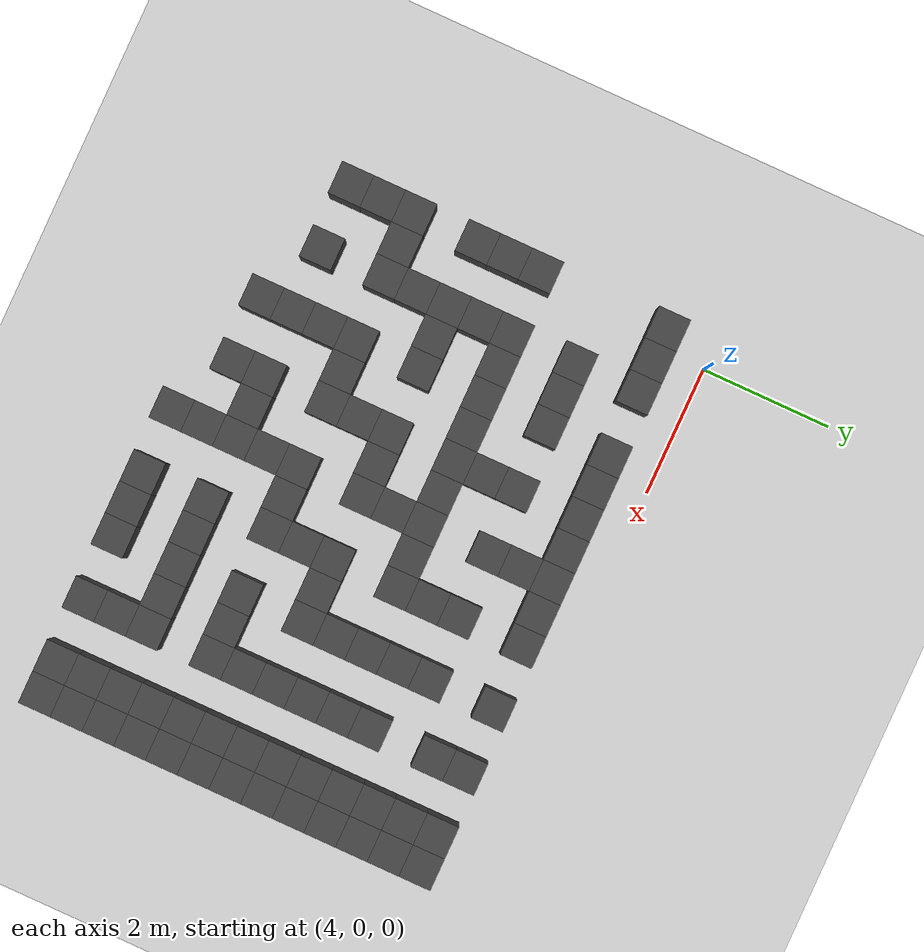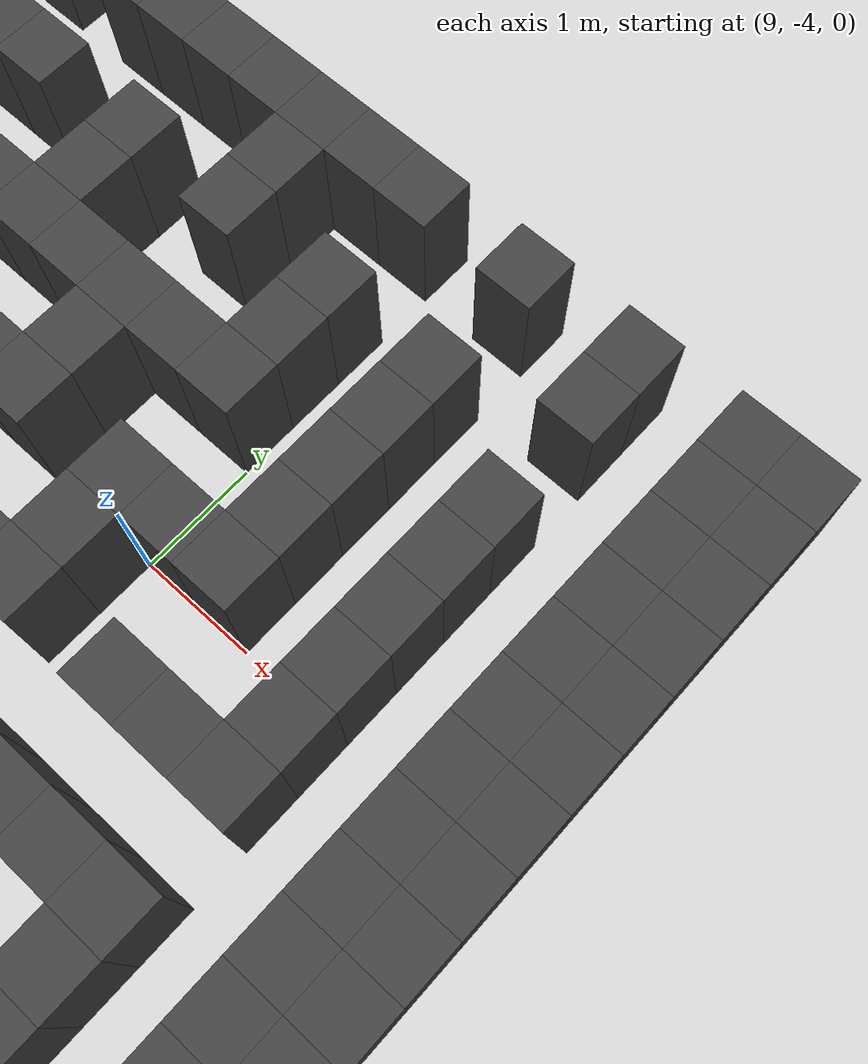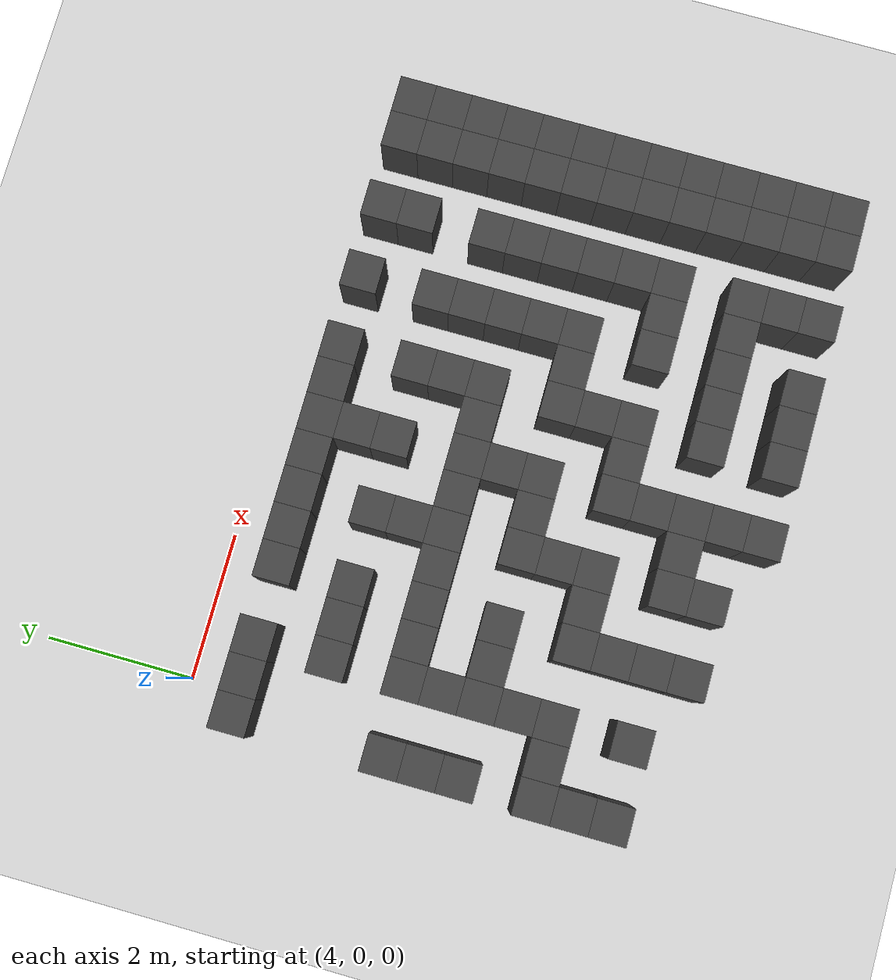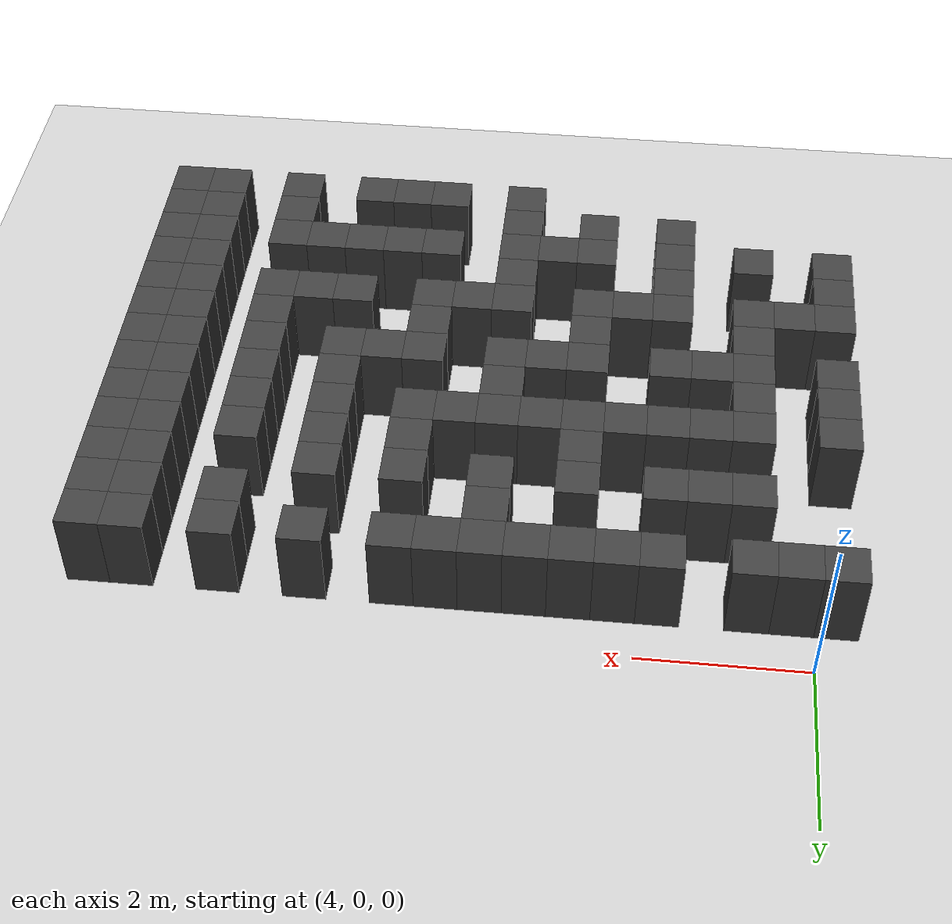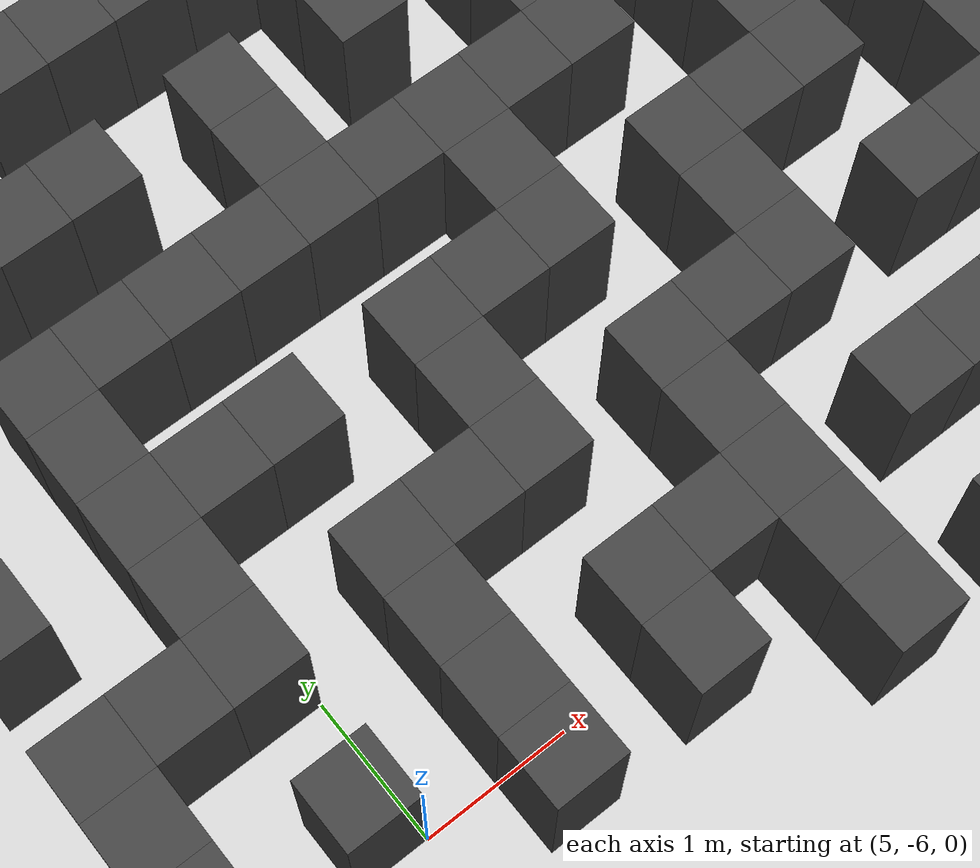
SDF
<sdf version="1.7">
 <world name="map_18347">
  <model name="ground_plane">
   <static>true</static>
   <link name="link">
    <collision name="collision">
     <geometry><plane><normal>0 0 1</normal><size>200 200</size></plane></geometry>
    </collision>
    <visual name="visual">
     <geometry><plane><normal>0 0 1</normal><size>200 200</size></plane></geometry>
     <material><ambient>0.8 0.8 0.8 1</ambient><diffuse>0.8 0.8 0.8 1</diffuse></material>
    </visual>
   </link>
  </model>
  <model name="maze_environment">
   <static>true</static>
   <link name="wall_681">
    <pose>3.750 -0.750 0.500 0 0 0</pose>
    <collision name="col"><geometry><box><size>0.5 0.5 1.0</size></box></geometry></collision>
    <visual name="vis">
     <geometry><box><size>0.5 0.5 1.0</size></box></geometry>
     <material><ambient>0.15 0.15 0.15 1</ambient><diffuse>0.25 0.25 0.25 1</diffuse></material>
    </visual>
   </link>
   <link name="wall_682">
    <pose>4.250 -0.750 0.500 0 0 0</pose>
    <collision name="col"><geometry><box><size>0.5 0.5 1.0</size></box></geometry></collision>
    <visual name="vis">
     <geometry><box><size>0.5 0.5 1.0</size></box></geometry>
     <material><ambient>0.15 0.15 0.15 1</ambient><diffuse>0.25 0.25 0.25 1</diffuse></material>
    </visual>
   </link>
   <link name="wall_683">
    <pose>4.750 -0.750 0.500 0 0 0</pose>
    <collision name="col"><geometry><box><size>0.5 0.5 1.0</size></box></geometry></collision>
    <visual name="vis">
     <geometry><box><size>0.5 0.5 1.0</size></box></geometry>
     <material><ambient>0.15 0.15 0.15 1</ambient><diffuse>0.25 0.25 0.25 1</diffuse></material>
    </visual>
   </link>
   <link name="wall_684">
    <pose>5.750 -0.750 0.500 0 0 0</pose>
    <collision name="col"><geometry><box><size>0.5 0.5 1.0</size></box></geometry></collision>
    <visual name="vis">
     <geometry><box><size>0.5 0.5 1.0</size></box></geometry>
     <material><ambient>0.15 0.15 0.15 1</ambient><diffuse>0.25 0.25 0.25 1</diffuse></material>
    </visual>
   </link>
   <link name="wall_685">
    <pose>6.250 -0.750 0.500 0 0 0</pose>
    <collision name="col"><geometry><box><size>0.5 0.5 1.0</size></box></geometry></collision>
    <visual name="vis">
     <geometry><box><size>0.5 0.5 1.0</size></box></geometry>
     <material><ambient>0.15 0.15 0.15 1</ambient><diffuse>0.25 0.25 0.25 1</diffuse></material>
    </visual>
   </link>
   <link name="wall_686">
    <pose>6.750 -0.750 0.500 0 0 0</pose>
    <collision name="col"><geometry><box><size>0.5 0.5 1.0</size></box></geometry></collision>
    <visual name="vis">
     <geometry><box><size>0.5 0.5 1.0</size></box></geometry>
     <material><ambient>0.15 0.15 0.15 1</ambient><diffuse>0.25 0.25 0.25 1</diffuse></material>
    </visual>
   </link>
   <link name="wall_687">
    <pose>7.250 -0.750 0.500 0 0 0</pose>
    <collision name="col"><geometry><box><size>0.5 0.5 1.0</size></box></geometry></collision>
    <visual name="vis">
     <geometry><box><size>0.5 0.5 1.0</size></box></geometry>
     <material><ambient>0.15 0.15 0.15 1</ambient><diffuse>0.25 0.25 0.25 1</diffuse></material>
    </visual>
   </link>
   <link name="wall_688">
    <pose>7.750 -0.750 0.500 0 0 0</pose>
    <collision name="col"><geometry><box><size>0.5 0.5 1.0</size></box></geometry></collision>
    <visual name="vis">
     <geometry><box><size>0.5 0.5 1.0</size></box></geometry>
     <material><ambient>0.15 0.15 0.15 1</ambient><diffuse>0.25 0.25 0.25 1</diffuse></material>
    </visual>
   </link>
   <link name="wall_689">
    <pose>8.250 -0.750 0.500 0 0 0</pose>
    <collision name="col"><geometry><box><size>0.5 0.5 1.0</size></box></geometry></collision>
    <visual name="vis">
     <geometry><box><size>0.5 0.5 1.0</size></box></geometry>
     <material><ambient>0.15 0.15 0.15 1</ambient><diffuse>0.25 0.25 0.25 1</diffuse></material>
    </visual>
   </link>
   <link name="wall_690">
    <pose>8.750 -0.750 0.500 0 0 0</pose>
    <collision name="col"><geometry><box><size>0.5 0.5 1.0</size></box></geometry></collision>
    <visual name="vis">
     <geometry><box><size>0.5 0.5 1.0</size></box></geometry>
     <material><ambient>0.15 0.15 0.15 1</ambient><diffuse>0.25 0.25 0.25 1</diffuse></material>
    </visual>
   </link>
   <link name="wall_691">
    <pose>9.750 -0.750 0.500 0 0 0</pose>
    <collision name="col"><geometry><box><size>0.5 0.5 1.0</size></box></geometry></collision>
    <visual name="vis">
     <geometry><box><size>0.5 0.5 1.0</size></box></geometry>
     <material><ambient>0.15 0.15 0.15 1</ambient><diffuse>0.25 0.25 0.25 1</diffuse></material>
    </visual>
   </link>
   <link name="wall_692">
    <pose>10.750 -0.750 0.500 0 0 0</pose>
    <collision name="col"><geometry><box><size>0.5 0.5 1.0</size></box></geometry></collision>
    <visual name="vis">
     <geometry><box><size>0.5 0.5 1.0</size></box></geometry>
     <material><ambient>0.15 0.15 0.15 1</ambient><diffuse>0.25 0.25 0.25 1</diffuse></material>
    </visual>
   </link>
   <link name="wall_693">
    <pose>11.750 -0.750 0.500 0 0 0</pose>
    <collision name="col"><geometry><box><size>0.5 0.5 1.0</size></box></geometry></collision>
    <visual name="vis">
     <geometry><box><size>0.5 0.5 1.0</size></box></geometry>
     <material><ambient>0.15 0.15 0.15 1</ambient><diffuse>0.25 0.25 0.25 1</diffuse></material>
    </visual>
   </link>
   <link name="wall_694">
    <pose>12.250 -0.750 0.500 0 0 0</pose>
    <collision name="col"><geometry><box><size>0.5 0.5 1.0</size></box></geometry></collision>
    <visual name="vis">
     <geometry><box><size>0.5 0.5 1.0</size></box></geometry>
     <material><ambient>0.15 0.15 0.15 1</ambient><diffuse>0.25 0.25 0.25 1</diffuse></material>
    </visual>
   </link>
   <link name="wall_703">
    <pose>7.750 -1.250 0.500 0 0 0</pose>
    <collision name="col"><geometry><box><size>0.5 0.5 1.0</size></box></geometry></collision>
    <visual name="vis">
     <geometry><box><size>0.5 0.5 1.0</size></box></geometry>
     <material><ambient>0.15 0.15 0.15 1</ambient><diffuse>0.25 0.25 0.25 1</diffuse></material>
    </visual>
   </link>
   <link name="wall_704">
    <pose>10.750 -1.250 0.500 0 0 0</pose>
    <collision name="col"><geometry><box><size>0.5 0.5 1.0</size></box></geometry></collision>
    <visual name="vis">
     <geometry><box><size>0.5 0.5 1.0</size></box></geometry>
     <material><ambient>0.15 0.15 0.15 1</ambient><diffuse>0.25 0.25 0.25 1</diffuse></material>
    </visual>
   </link>
   <link name="wall_705">
    <pose>11.750 -1.250 0.500 0 0 0</pose>
    <collision name="col"><geometry><box><size>0.5 0.5 1.0</size></box></geometry></collision>
    <visual name="vis">
     <geometry><box><size>0.5 0.5 1.0</size></box></geometry>
     <material><ambient>0.15 0.15 0.15 1</ambient><diffuse>0.25 0.25 0.25 1</diffuse></material>
    </visual>
   </link>
   <link name="wall_706">
    <pose>12.250 -1.250 0.500 0 0 0</pose>
    <collision name="col"><geometry><box><size>0.5 0.5 1.0</size></box></geometry></collision>
    <visual name="vis">
     <geometry><box><size>0.5 0.5 1.0</size></box></geometry>
     <material><ambient>0.15 0.15 0.15 1</ambient><diffuse>0.25 0.25 0.25 1</diffuse></material>
    </visual>
   </link>
   <link name="wall_731">
    <pose>4.750 -1.750 0.500 0 0 0</pose>
    <collision name="col"><geometry><box><size>0.5 0.5 1.0</size></box></geometry></collision>
    <visual name="vis">
     <geometry><box><size>0.5 0.5 1.0</size></box></geometry>
     <material><ambient>0.15 0.15 0.15 1</ambient><diffuse>0.25 0.25 0.25 1</diffuse></material>
    </visual>
   </link>
   <link name="wall_732">
    <pose>5.250 -1.750 0.500 0 0 0</pose>
    <collision name="col"><geometry><box><size>0.5 0.5 1.0</size></box></geometry></collision>
    <visual name="vis">
     <geometry><box><size>0.5 0.5 1.0</size></box></geometry>
     <material><ambient>0.15 0.15 0.15 1</ambient><diffuse>0.25 0.25 0.25 1</diffuse></material>
    </visual>
   </link>
   <link name="wall_733">
    <pose>5.750 -1.750 0.500 0 0 0</pose>
    <collision name="col"><geometry><box><size>0.5 0.5 1.0</size></box></geometry></collision>
    <visual name="vis">
     <geometry><box><size>0.5 0.5 1.0</size></box></geometry>
     <material><ambient>0.15 0.15 0.15 1</ambient><diffuse>0.25 0.25 0.25 1</diffuse></material>
    </visual>
   </link>
   <link name="wall_734">
    <pose>6.750 -1.750 0.500 0 0 0</pose>
    <collision name="col"><geometry><box><size>0.5 0.5 1.0</size></box></geometry></collision>
    <visual name="vis">
     <geometry><box><size>0.5 0.5 1.0</size></box></geometry>
     <material><ambient>0.15 0.15 0.15 1</ambient><diffuse>0.25 0.25 0.25 1</diffuse></material>
    </visual>
   </link>
   <link name="wall_735">
    <pose>7.750 -1.750 0.500 0 0 0</pose>
    <collision name="col"><geometry><box><size>0.5 0.5 1.0</size></box></geometry></collision>
    <visual name="vis">
     <geometry><box><size>0.5 0.5 1.0</size></box></geometry>
     <material><ambient>0.15 0.15 0.15 1</ambient><diffuse>0.25 0.25 0.25 1</diffuse></material>
    </visual>
   </link>
   <link name="wall_736">
    <pose>8.750 -1.750 0.500 0 0 0</pose>
    <collision name="col"><geometry><box><size>0.5 0.5 1.0</size></box></geometry></collision>
    <visual name="vis">
     <geometry><box><size>0.5 0.5 1.0</size></box></geometry>
     <material><ambient>0.15 0.15 0.15 1</ambient><diffuse>0.25 0.25 0.25 1</diffuse></material>
    </visual>
   </link>
   <link name="wall_737">
    <pose>9.750 -1.750 0.500 0 0 0</pose>
    <collision name="col"><geometry><box><size>0.5 0.5 1.0</size></box></geometry></collision>
    <visual name="vis">
     <geometry><box><size>0.5 0.5 1.0</size></box></geometry>
     <material><ambient>0.15 0.15 0.15 1</ambient><diffuse>0.25 0.25 0.25 1</diffuse></material>
    </visual>
   </link>
   <link name="wall_738">
    <pose>11.750 -1.750 0.500 0 0 0</pose>
    <collision name="col"><geometry><box><size>0.5 0.5 1.0</size></box></geometry></collision>
    <visual name="vis">
     <geometry><box><size>0.5 0.5 1.0</size></box></geometry>
     <material><ambient>0.15 0.15 0.15 1</ambient><diffuse>0.25 0.25 0.25 1</diffuse></material>
    </visual>
   </link>
   <link name="wall_739">
    <pose>12.250 -1.750 0.500 0 0 0</pose>
    <collision name="col"><geometry><box><size>0.5 0.5 1.0</size></box></geometry></collision>
    <visual name="vis">
     <geometry><box><size>0.5 0.5 1.0</size></box></geometry>
     <material><ambient>0.15 0.15 0.15 1</ambient><diffuse>0.25 0.25 0.25 1</diffuse></material>
    </visual>
   </link>
   <link name="wall_749">
    <pose>6.750 -2.250 0.500 0 0 0</pose>
    <collision name="col"><geometry><box><size>0.5 0.5 1.0</size></box></geometry></collision>
    <visual name="vis">
     <geometry><box><size>0.5 0.5 1.0</size></box></geometry>
     <material><ambient>0.15 0.15 0.15 1</ambient><diffuse>0.25 0.25 0.25 1</diffuse></material>
    </visual>
   </link>
   <link name="wall_750">
    <pose>8.750 -2.250 0.500 0 0 0</pose>
    <collision name="col"><geometry><box><size>0.5 0.5 1.0</size></box></geometry></collision>
    <visual name="vis">
     <geometry><box><size>0.5 0.5 1.0</size></box></geometry>
     <material><ambient>0.15 0.15 0.15 1</ambient><diffuse>0.25 0.25 0.25 1</diffuse></material>
    </visual>
   </link>
   <link name="wall_751">
    <pose>9.750 -2.250 0.500 0 0 0</pose>
    <collision name="col"><geometry><box><size>0.5 0.5 1.0</size></box></geometry></collision>
    <visual name="vis">
     <geometry><box><size>0.5 0.5 1.0</size></box></geometry>
     <material><ambient>0.15 0.15 0.15 1</ambient><diffuse>0.25 0.25 0.25 1</diffuse></material>
    </visual>
   </link>
   <link name="wall_752">
    <pose>10.750 -2.250 0.500 0 0 0</pose>
    <collision name="col"><geometry><box><size>0.5 0.5 1.0</size></box></geometry></collision>
    <visual name="vis">
     <geometry><box><size>0.5 0.5 1.0</size></box></geometry>
     <material><ambient>0.15 0.15 0.15 1</ambient><diffuse>0.25 0.25 0.25 1</diffuse></material>
    </visual>
   </link>
   <link name="wall_753">
    <pose>11.750 -2.250 0.500 0 0 0</pose>
    <collision name="col"><geometry><box><size>0.5 0.5 1.0</size></box></geometry></collision>
    <visual name="vis">
     <geometry><box><size>0.5 0.5 1.0</size></box></geometry>
     <material><ambient>0.15 0.15 0.15 1</ambient><diffuse>0.25 0.25 0.25 1</diffuse></material>
    </visual>
   </link>
   <link name="wall_754">
    <pose>12.250 -2.250 0.500 0 0 0</pose>
    <collision name="col"><geometry><box><size>0.5 0.5 1.0</size></box></geometry></collision>
    <visual name="vis">
     <geometry><box><size>0.5 0.5 1.0</size></box></geometry>
     <material><ambient>0.15 0.15 0.15 1</ambient><diffuse>0.25 0.25 0.25 1</diffuse></material>
    </visual>
   </link>
   <link name="wall_776">
    <pose>3.750 -2.750 0.500 0 0 0</pose>
    <collision name="col"><geometry><box><size>0.5 0.5 1.0</size></box></geometry></collision>
    <visual name="vis">
     <geometry><box><size>0.5 0.5 1.0</size></box></geometry>
     <material><ambient>0.15 0.15 0.15 1</ambient><diffuse>0.25 0.25 0.25 1</diffuse></material>
    </visual>
   </link>
   <link name="wall_777">
    <pose>4.750 -2.750 0.500 0 0 0</pose>
    <collision name="col"><geometry><box><size>0.5 0.5 1.0</size></box></geometry></collision>
    <visual name="vis">
     <geometry><box><size>0.5 0.5 1.0</size></box></geometry>
     <material><ambient>0.15 0.15 0.15 1</ambient><diffuse>0.25 0.25 0.25 1</diffuse></material>
    </visual>
   </link>
   <link name="wall_778">
    <pose>5.250 -2.750 0.500 0 0 0</pose>
    <collision name="col"><geometry><box><size>0.5 0.5 1.0</size></box></geometry></collision>
    <visual name="vis">
     <geometry><box><size>0.5 0.5 1.0</size></box></geometry>
     <material><ambient>0.15 0.15 0.15 1</ambient><diffuse>0.25 0.25 0.25 1</diffuse></material>
    </visual>
   </link>
   <link name="wall_779">
    <pose>5.750 -2.750 0.500 0 0 0</pose>
    <collision name="col"><geometry><box><size>0.5 0.5 1.0</size></box></geometry></collision>
    <visual name="vis">
     <geometry><box><size>0.5 0.5 1.0</size></box></geometry>
     <material><ambient>0.15 0.15 0.15 1</ambient><diffuse>0.25 0.25 0.25 1</diffuse></material>
    </visual>
   </link>
   <link name="wall_780">
    <pose>6.250 -2.750 0.500 0 0 0</pose>
    <collision name="col"><geometry><box><size>0.5 0.5 1.0</size></box></geometry></collision>
    <visual name="vis">
     <geometry><box><size>0.5 0.5 1.0</size></box></geometry>
     <material><ambient>0.15 0.15 0.15 1</ambient><diffuse>0.25 0.25 0.25 1</diffuse></material>
    </visual>
   </link>
   <link name="wall_781">
    <pose>6.750 -2.750 0.500 0 0 0</pose>
    <collision name="col"><geometry><box><size>0.5 0.5 1.0</size></box></geometry></collision>
    <visual name="vis">
     <geometry><box><size>0.5 0.5 1.0</size></box></geometry>
     <material><ambient>0.15 0.15 0.15 1</ambient><diffuse>0.25 0.25 0.25 1</diffuse></material>
    </visual>
   </link>
   <link name="wall_782">
    <pose>7.250 -2.750 0.500 0 0 0</pose>
    <collision name="col"><geometry><box><size>0.5 0.5 1.0</size></box></geometry></collision>
    <visual name="vis">
     <geometry><box><size>0.5 0.5 1.0</size></box></geometry>
     <material><ambient>0.15 0.15 0.15 1</ambient><diffuse>0.25 0.25 0.25 1</diffuse></material>
    </visual>
   </link>
   <link name="wall_783">
    <pose>7.750 -2.750 0.500 0 0 0</pose>
    <collision name="col"><geometry><box><size>0.5 0.5 1.0</size></box></geometry></collision>
    <visual name="vis">
     <geometry><box><size>0.5 0.5 1.0</size></box></geometry>
     <material><ambient>0.15 0.15 0.15 1</ambient><diffuse>0.25 0.25 0.25 1</diffuse></material>
    </visual>
   </link>
   <link name="wall_784">
    <pose>8.250 -2.750 0.500 0 0 0</pose>
    <collision name="col"><geometry><box><size>0.5 0.5 1.0</size></box></geometry></collision>
    <visual name="vis">
     <geometry><box><size>0.5 0.5 1.0</size></box></geometry>
     <material><ambient>0.15 0.15 0.15 1</ambient><diffuse>0.25 0.25 0.25 1</diffuse></material>
    </visual>
   </link>
   <link name="wall_785">
    <pose>8.750 -2.750 0.500 0 0 0</pose>
    <collision name="col"><geometry><box><size>0.5 0.5 1.0</size></box></geometry></collision>
    <visual name="vis">
     <geometry><box><size>0.5 0.5 1.0</size></box></geometry>
     <material><ambient>0.15 0.15 0.15 1</ambient><diffuse>0.25 0.25 0.25 1</diffuse></material>
    </visual>
   </link>
   <link name="wall_786">
    <pose>9.750 -2.750 0.500 0 0 0</pose>
    <collision name="col"><geometry><box><size>0.5 0.5 1.0</size></box></geometry></collision>
    <visual name="vis">
     <geometry><box><size>0.5 0.5 1.0</size></box></geometry>
     <material><ambient>0.15 0.15 0.15 1</ambient><diffuse>0.25 0.25 0.25 1</diffuse></material>
    </visual>
   </link>
   <link name="wall_787">
    <pose>10.750 -2.750 0.500 0 0 0</pose>
    <collision name="col"><geometry><box><size>0.5 0.5 1.0</size></box></geometry></collision>
    <visual name="vis">
     <geometry><box><size>0.5 0.5 1.0</size></box></geometry>
     <material><ambient>0.15 0.15 0.15 1</ambient><diffuse>0.25 0.25 0.25 1</diffuse></material>
    </visual>
   </link>
   <link name="wall_788">
    <pose>11.750 -2.750 0.500 0 0 0</pose>
    <collision name="col"><geometry><box><size>0.5 0.5 1.0</size></box></geometry></collision>
    <visual name="vis">
     <geometry><box><size>0.5 0.5 1.0</size></box></geometry>
     <material><ambient>0.15 0.15 0.15 1</ambient><diffuse>0.25 0.25 0.25 1</diffuse></material>
    </visual>
   </link>
   <link name="wall_789">
    <pose>12.250 -2.750 0.500 0 0 0</pose>
    <collision name="col"><geometry><box><size>0.5 0.5 1.0</size></box></geometry></collision>
    <visual name="vis">
     <geometry><box><size>0.5 0.5 1.0</size></box></geometry>
     <material><ambient>0.15 0.15 0.15 1</ambient><diffuse>0.25 0.25 0.25 1</diffuse></material>
    </visual>
   </link>
   <link name="wall_796">
    <pose>3.750 -3.250 0.500 0 0 0</pose>
    <collision name="col"><geometry><box><size>0.5 0.5 1.0</size></box></geometry></collision>
    <visual name="vis">
     <geometry><box><size>0.5 0.5 1.0</size></box></geometry>
     <material><ambient>0.15 0.15 0.15 1</ambient><diffuse>0.25 0.25 0.25 1</diffuse></material>
    </visual>
   </link>
   <link name="wall_797">
    <pose>4.750 -3.250 0.500 0 0 0</pose>
    <collision name="col"><geometry><box><size>0.5 0.5 1.0</size></box></geometry></collision>
    <visual name="vis">
     <geometry><box><size>0.5 0.5 1.0</size></box></geometry>
     <material><ambient>0.15 0.15 0.15 1</ambient><diffuse>0.25 0.25 0.25 1</diffuse></material>
    </visual>
   </link>
   <link name="wall_798">
    <pose>7.750 -3.250 0.500 0 0 0</pose>
    <collision name="col"><geometry><box><size>0.5 0.5 1.0</size></box></geometry></collision>
    <visual name="vis">
     <geometry><box><size>0.5 0.5 1.0</size></box></geometry>
     <material><ambient>0.15 0.15 0.15 1</ambient><diffuse>0.25 0.25 0.25 1</diffuse></material>
    </visual>
   </link>
   <link name="wall_799">
    <pose>9.750 -3.250 0.500 0 0 0</pose>
    <collision name="col"><geometry><box><size>0.5 0.5 1.0</size></box></geometry></collision>
    <visual name="vis">
     <geometry><box><size>0.5 0.5 1.0</size></box></geometry>
     <material><ambient>0.15 0.15 0.15 1</ambient><diffuse>0.25 0.25 0.25 1</diffuse></material>
    </visual>
   </link>
   <link name="wall_800">
    <pose>10.750 -3.250 0.500 0 0 0</pose>
    <collision name="col"><geometry><box><size>0.5 0.5 1.0</size></box></geometry></collision>
    <visual name="vis">
     <geometry><box><size>0.5 0.5 1.0</size></box></geometry>
     <material><ambient>0.15 0.15 0.15 1</ambient><diffuse>0.25 0.25 0.25 1</diffuse></material>
    </visual>
   </link>
   <link name="wall_801">
    <pose>11.750 -3.250 0.500 0 0 0</pose>
    <collision name="col"><geometry><box><size>0.5 0.5 1.0</size></box></geometry></collision>
    <visual name="vis">
     <geometry><box><size>0.5 0.5 1.0</size></box></geometry>
     <material><ambient>0.15 0.15 0.15 1</ambient><diffuse>0.25 0.25 0.25 1</diffuse></material>
    </visual>
   </link>
   <link name="wall_802">
    <pose>12.250 -3.250 0.500 0 0 0</pose>
    <collision name="col"><geometry><box><size>0.5 0.5 1.0</size></box></geometry></collision>
    <visual name="vis">
     <geometry><box><size>0.5 0.5 1.0</size></box></geometry>
     <material><ambient>0.15 0.15 0.15 1</ambient><diffuse>0.25 0.25 0.25 1</diffuse></material>
    </visual>
   </link>
   <link name="wall_828">
    <pose>3.750 -3.750 0.500 0 0 0</pose>
    <collision name="col"><geometry><box><size>0.5 0.5 1.0</size></box></geometry></collision>
    <visual name="vis">
     <geometry><box><size>0.5 0.5 1.0</size></box></geometry>
     <material><ambient>0.15 0.15 0.15 1</ambient><diffuse>0.25 0.25 0.25 1</diffuse></material>
    </visual>
   </link>
   <link name="wall_829">
    <pose>4.750 -3.750 0.500 0 0 0</pose>
    <collision name="col"><geometry><box><size>0.5 0.5 1.0</size></box></geometry></collision>
    <visual name="vis">
     <geometry><box><size>0.5 0.5 1.0</size></box></geometry>
     <material><ambient>0.15 0.15 0.15 1</ambient><diffuse>0.25 0.25 0.25 1</diffuse></material>
    </visual>
   </link>
   <link name="wall_830">
    <pose>5.250 -3.750 0.500 0 0 0</pose>
    <collision name="col"><geometry><box><size>0.5 0.5 1.0</size></box></geometry></collision>
    <visual name="vis">
     <geometry><box><size>0.5 0.5 1.0</size></box></geometry>
     <material><ambient>0.15 0.15 0.15 1</ambient><diffuse>0.25 0.25 0.25 1</diffuse></material>
    </visual>
   </link>
   <link name="wall_831">
    <pose>5.750 -3.750 0.500 0 0 0</pose>
    <collision name="col"><geometry><box><size>0.5 0.5 1.0</size></box></geometry></collision>
    <visual name="vis">
     <geometry><box><size>0.5 0.5 1.0</size></box></geometry>
     <material><ambient>0.15 0.15 0.15 1</ambient><diffuse>0.25 0.25 0.25 1</diffuse></material>
    </visual>
   </link>
   <link name="wall_832">
    <pose>6.750 -3.750 0.500 0 0 0</pose>
    <collision name="col"><geometry><box><size>0.5 0.5 1.0</size></box></geometry></collision>
    <visual name="vis">
     <geometry><box><size>0.5 0.5 1.0</size></box></geometry>
     <material><ambient>0.15 0.15 0.15 1</ambient><diffuse>0.25 0.25 0.25 1</diffuse></material>
    </visual>
   </link>
   <link name="wall_833">
    <pose>7.250 -3.750 0.500 0 0 0</pose>
    <collision name="col"><geometry><box><size>0.5 0.5 1.0</size></box></geometry></collision>
    <visual name="vis">
     <geometry><box><size>0.5 0.5 1.0</size></box></geometry>
     <material><ambient>0.15 0.15 0.15 1</ambient><diffuse>0.25 0.25 0.25 1</diffuse></material>
    </visual>
   </link>
   <link name="wall_834">
    <pose>7.750 -3.750 0.500 0 0 0</pose>
    <collision name="col"><geometry><box><size>0.5 0.5 1.0</size></box></geometry></collision>
    <visual name="vis">
     <geometry><box><size>0.5 0.5 1.0</size></box></geometry>
     <material><ambient>0.15 0.15 0.15 1</ambient><diffuse>0.25 0.25 0.25 1</diffuse></material>
    </visual>
   </link>
   <link name="wall_835">
    <pose>8.750 -3.750 0.500 0 0 0</pose>
    <collision name="col"><geometry><box><size>0.5 0.5 1.0</size></box></geometry></collision>
    <visual name="vis">
     <geometry><box><size>0.5 0.5 1.0</size></box></geometry>
     <material><ambient>0.15 0.15 0.15 1</ambient><diffuse>0.25 0.25 0.25 1</diffuse></material>
    </visual>
   </link>
   <link name="wall_836">
    <pose>9.250 -3.750 0.500 0 0 0</pose>
    <collision name="col"><geometry><box><size>0.5 0.5 1.0</size></box></geometry></collision>
    <visual name="vis">
     <geometry><box><size>0.5 0.5 1.0</size></box></geometry>
     <material><ambient>0.15 0.15 0.15 1</ambient><diffuse>0.25 0.25 0.25 1</diffuse></material>
    </visual>
   </link>
   <link name="wall_837">
    <pose>9.750 -3.750 0.500 0 0 0</pose>
    <collision name="col"><geometry><box><size>0.5 0.5 1.0</size></box></geometry></collision>
    <visual name="vis">
     <geometry><box><size>0.5 0.5 1.0</size></box></geometry>
     <material><ambient>0.15 0.15 0.15 1</ambient><diffuse>0.25 0.25 0.25 1</diffuse></material>
    </visual>
   </link>
   <link name="wall_838">
    <pose>10.750 -3.750 0.500 0 0 0</pose>
    <collision name="col"><geometry><box><size>0.5 0.5 1.0</size></box></geometry></collision>
    <visual name="vis">
     <geometry><box><size>0.5 0.5 1.0</size></box></geometry>
     <material><ambient>0.15 0.15 0.15 1</ambient><diffuse>0.25 0.25 0.25 1</diffuse></material>
    </visual>
   </link>
   <link name="wall_839">
    <pose>11.750 -3.750 0.500 0 0 0</pose>
    <collision name="col"><geometry><box><size>0.5 0.5 1.0</size></box></geometry></collision>
    <visual name="vis">
     <geometry><box><size>0.5 0.5 1.0</size></box></geometry>
     <material><ambient>0.15 0.15 0.15 1</ambient><diffuse>0.25 0.25 0.25 1</diffuse></material>
    </visual>
   </link>
   <link name="wall_840">
    <pose>12.250 -3.750 0.500 0 0 0</pose>
    <collision name="col"><geometry><box><size>0.5 0.5 1.0</size></box></geometry></collision>
    <visual name="vis">
     <geometry><box><size>0.5 0.5 1.0</size></box></geometry>
     <material><ambient>0.15 0.15 0.15 1</ambient><diffuse>0.25 0.25 0.25 1</diffuse></material>
    </visual>
   </link>
   <link name="wall_847">
    <pose>4.750 -4.250 0.500 0 0 0</pose>
    <collision name="col"><geometry><box><size>0.5 0.5 1.0</size></box></geometry></collision>
    <visual name="vis">
     <geometry><box><size>0.5 0.5 1.0</size></box></geometry>
     <material><ambient>0.15 0.15 0.15 1</ambient><diffuse>0.25 0.25 0.25 1</diffuse></material>
    </visual>
   </link>
   <link name="wall_848">
    <pose>6.750 -4.250 0.500 0 0 0</pose>
    <collision name="col"><geometry><box><size>0.5 0.5 1.0</size></box></geometry></collision>
    <visual name="vis">
     <geometry><box><size>0.5 0.5 1.0</size></box></geometry>
     <material><ambient>0.15 0.15 0.15 1</ambient><diffuse>0.25 0.25 0.25 1</diffuse></material>
    </visual>
   </link>
   <link name="wall_849">
    <pose>8.750 -4.250 0.500 0 0 0</pose>
    <collision name="col"><geometry><box><size>0.5 0.5 1.0</size></box></geometry></collision>
    <visual name="vis">
     <geometry><box><size>0.5 0.5 1.0</size></box></geometry>
     <material><ambient>0.15 0.15 0.15 1</ambient><diffuse>0.25 0.25 0.25 1</diffuse></material>
    </visual>
   </link>
   <link name="wall_850">
    <pose>10.750 -4.250 0.500 0 0 0</pose>
    <collision name="col"><geometry><box><size>0.5 0.5 1.0</size></box></geometry></collision>
    <visual name="vis">
     <geometry><box><size>0.5 0.5 1.0</size></box></geometry>
     <material><ambient>0.15 0.15 0.15 1</ambient><diffuse>0.25 0.25 0.25 1</diffuse></material>
    </visual>
   </link>
   <link name="wall_851">
    <pose>11.750 -4.250 0.500 0 0 0</pose>
    <collision name="col"><geometry><box><size>0.5 0.5 1.0</size></box></geometry></collision>
    <visual name="vis">
     <geometry><box><size>0.5 0.5 1.0</size></box></geometry>
     <material><ambient>0.15 0.15 0.15 1</ambient><diffuse>0.25 0.25 0.25 1</diffuse></material>
    </visual>
   </link>
   <link name="wall_852">
    <pose>12.250 -4.250 0.500 0 0 0</pose>
    <collision name="col"><geometry><box><size>0.5 0.5 1.0</size></box></geometry></collision>
    <visual name="vis">
     <geometry><box><size>0.5 0.5 1.0</size></box></geometry>
     <material><ambient>0.15 0.15 0.15 1</ambient><diffuse>0.25 0.25 0.25 1</diffuse></material>
    </visual>
   </link>
   <link name="wall_877">
    <pose>3.750 -4.750 0.500 0 0 0</pose>
    <collision name="col"><geometry><box><size>0.5 0.5 1.0</size></box></geometry></collision>
    <visual name="vis">
     <geometry><box><size>0.5 0.5 1.0</size></box></geometry>
     <material><ambient>0.15 0.15 0.15 1</ambient><diffuse>0.25 0.25 0.25 1</diffuse></material>
    </visual>
   </link>
   <link name="wall_878">
    <pose>4.250 -4.750 0.500 0 0 0</pose>
    <collision name="col"><geometry><box><size>0.5 0.5 1.0</size></box></geometry></collision>
    <visual name="vis">
     <geometry><box><size>0.5 0.5 1.0</size></box></geometry>
     <material><ambient>0.15 0.15 0.15 1</ambient><diffuse>0.25 0.25 0.25 1</diffuse></material>
    </visual>
   </link>
   <link name="wall_879">
    <pose>4.750 -4.750 0.500 0 0 0</pose>
    <collision name="col"><geometry><box><size>0.5 0.5 1.0</size></box></geometry></collision>
    <visual name="vis">
     <geometry><box><size>0.5 0.5 1.0</size></box></geometry>
     <material><ambient>0.15 0.15 0.15 1</ambient><diffuse>0.25 0.25 0.25 1</diffuse></material>
    </visual>
   </link>
   <link name="wall_880">
    <pose>5.750 -4.750 0.500 0 0 0</pose>
    <collision name="col"><geometry><box><size>0.5 0.5 1.0</size></box></geometry></collision>
    <visual name="vis">
     <geometry><box><size>0.5 0.5 1.0</size></box></geometry>
     <material><ambient>0.15 0.15 0.15 1</ambient><diffuse>0.25 0.25 0.25 1</diffuse></material>
    </visual>
   </link>
   <link name="wall_881">
    <pose>6.250 -4.750 0.500 0 0 0</pose>
    <collision name="col"><geometry><box><size>0.5 0.5 1.0</size></box></geometry></collision>
    <visual name="vis">
     <geometry><box><size>0.5 0.5 1.0</size></box></geometry>
     <material><ambient>0.15 0.15 0.15 1</ambient><diffuse>0.25 0.25 0.25 1</diffuse></material>
    </visual>
   </link>
   <link name="wall_882">
    <pose>6.750 -4.750 0.500 0 0 0</pose>
    <collision name="col"><geometry><box><size>0.5 0.5 1.0</size></box></geometry></collision>
    <visual name="vis">
     <geometry><box><size>0.5 0.5 1.0</size></box></geometry>
     <material><ambient>0.15 0.15 0.15 1</ambient><diffuse>0.25 0.25 0.25 1</diffuse></material>
    </visual>
   </link>
   <link name="wall_883">
    <pose>7.750 -4.750 0.500 0 0 0</pose>
    <collision name="col"><geometry><box><size>0.5 0.5 1.0</size></box></geometry></collision>
    <visual name="vis">
     <geometry><box><size>0.5 0.5 1.0</size></box></geometry>
     <material><ambient>0.15 0.15 0.15 1</ambient><diffuse>0.25 0.25 0.25 1</diffuse></material>
    </visual>
   </link>
   <link name="wall_884">
    <pose>8.250 -4.750 0.500 0 0 0</pose>
    <collision name="col"><geometry><box><size>0.5 0.5 1.0</size></box></geometry></collision>
    <visual name="vis">
     <geometry><box><size>0.5 0.5 1.0</size></box></geometry>
     <material><ambient>0.15 0.15 0.15 1</ambient><diffuse>0.25 0.25 0.25 1</diffuse></material>
    </visual>
   </link>
   <link name="wall_885">
    <pose>8.750 -4.750 0.500 0 0 0</pose>
    <collision name="col"><geometry><box><size>0.5 0.5 1.0</size></box></geometry></collision>
    <visual name="vis">
     <geometry><box><size>0.5 0.5 1.0</size></box></geometry>
     <material><ambient>0.15 0.15 0.15 1</ambient><diffuse>0.25 0.25 0.25 1</diffuse></material>
    </visual>
   </link>
   <link name="wall_886">
    <pose>9.750 -4.750 0.500 0 0 0</pose>
    <collision name="col"><geometry><box><size>0.5 0.5 1.0</size></box></geometry></collision>
    <visual name="vis">
     <geometry><box><size>0.5 0.5 1.0</size></box></geometry>
     <material><ambient>0.15 0.15 0.15 1</ambient><diffuse>0.25 0.25 0.25 1</diffuse></material>
    </visual>
   </link>
   <link name="wall_887">
    <pose>10.250 -4.750 0.500 0 0 0</pose>
    <collision name="col"><geometry><box><size>0.5 0.5 1.0</size></box></geometry></collision>
    <visual name="vis">
     <geometry><box><size>0.5 0.5 1.0</size></box></geometry>
     <material><ambient>0.15 0.15 0.15 1</ambient><diffuse>0.25 0.25 0.25 1</diffuse></material>
    </visual>
   </link>
   <link name="wall_888">
    <pose>10.750 -4.750 0.500 0 0 0</pose>
    <collision name="col"><geometry><box><size>0.5 0.5 1.0</size></box></geometry></collision>
    <visual name="vis">
     <geometry><box><size>0.5 0.5 1.0</size></box></geometry>
     <material><ambient>0.15 0.15 0.15 1</ambient><diffuse>0.25 0.25 0.25 1</diffuse></material>
    </visual>
   </link>
   <link name="wall_889">
    <pose>11.750 -4.750 0.500 0 0 0</pose>
    <collision name="col"><geometry><box><size>0.5 0.5 1.0</size></box></geometry></collision>
    <visual name="vis">
     <geometry><box><size>0.5 0.5 1.0</size></box></geometry>
     <material><ambient>0.15 0.15 0.15 1</ambient><diffuse>0.25 0.25 0.25 1</diffuse></material>
    </visual>
   </link>
   <link name="wall_890">
    <pose>12.250 -4.750 0.500 0 0 0</pose>
    <collision name="col"><geometry><box><size>0.5 0.5 1.0</size></box></geometry></collision>
    <visual name="vis">
     <geometry><box><size>0.5 0.5 1.0</size></box></geometry>
     <material><ambient>0.15 0.15 0.15 1</ambient><diffuse>0.25 0.25 0.25 1</diffuse></material>
    </visual>
   </link>
   <link name="wall_899">
    <pose>3.750 -5.250 0.500 0 0 0</pose>
    <collision name="col"><geometry><box><size>0.5 0.5 1.0</size></box></geometry></collision>
    <visual name="vis">
     <geometry><box><size>0.5 0.5 1.0</size></box></geometry>
     <material><ambient>0.15 0.15 0.15 1</ambient><diffuse>0.25 0.25 0.25 1</diffuse></material>
    </visual>
   </link>
   <link name="wall_900">
    <pose>5.750 -5.250 0.500 0 0 0</pose>
    <collision name="col"><geometry><box><size>0.5 0.5 1.0</size></box></geometry></collision>
    <visual name="vis">
     <geometry><box><size>0.5 0.5 1.0</size></box></geometry>
     <material><ambient>0.15 0.15 0.15 1</ambient><diffuse>0.25 0.25 0.25 1</diffuse></material>
    </visual>
   </link>
   <link name="wall_901">
    <pose>7.750 -5.250 0.500 0 0 0</pose>
    <collision name="col"><geometry><box><size>0.5 0.5 1.0</size></box></geometry></collision>
    <visual name="vis">
     <geometry><box><size>0.5 0.5 1.0</size></box></geometry>
     <material><ambient>0.15 0.15 0.15 1</ambient><diffuse>0.25 0.25 0.25 1</diffuse></material>
    </visual>
   </link>
   <link name="wall_902">
    <pose>11.750 -5.250 0.500 0 0 0</pose>
    <collision name="col"><geometry><box><size>0.5 0.5 1.0</size></box></geometry></collision>
    <visual name="vis">
     <geometry><box><size>0.5 0.5 1.0</size></box></geometry>
     <material><ambient>0.15 0.15 0.15 1</ambient><diffuse>0.25 0.25 0.25 1</diffuse></material>
    </visual>
   </link>
   <link name="wall_903">
    <pose>12.250 -5.250 0.500 0 0 0</pose>
    <collision name="col"><geometry><box><size>0.5 0.5 1.0</size></box></geometry></collision>
    <visual name="vis">
     <geometry><box><size>0.5 0.5 1.0</size></box></geometry>
     <material><ambient>0.15 0.15 0.15 1</ambient><diffuse>0.25 0.25 0.25 1</diffuse></material>
    </visual>
   </link>
   <link name="wall_924">
    <pose>3.750 -5.750 0.500 0 0 0</pose>
    <collision name="col"><geometry><box><size>0.5 0.5 1.0</size></box></geometry></collision>
    <visual name="vis">
     <geometry><box><size>0.5 0.5 1.0</size></box></geometry>
     <material><ambient>0.15 0.15 0.15 1</ambient><diffuse>0.25 0.25 0.25 1</diffuse></material>
    </visual>
   </link>
   <link name="wall_925">
    <pose>4.750 -5.750 0.500 0 0 0</pose>
    <collision name="col"><geometry><box><size>0.5 0.5 1.0</size></box></geometry></collision>
    <visual name="vis">
     <geometry><box><size>0.5 0.5 1.0</size></box></geometry>
     <material><ambient>0.15 0.15 0.15 1</ambient><diffuse>0.25 0.25 0.25 1</diffuse></material>
    </visual>
   </link>
   <link name="wall_926">
    <pose>5.750 -5.750 0.500 0 0 0</pose>
    <collision name="col"><geometry><box><size>0.5 0.5 1.0</size></box></geometry></collision>
    <visual name="vis">
     <geometry><box><size>0.5 0.5 1.0</size></box></geometry>
     <material><ambient>0.15 0.15 0.15 1</ambient><diffuse>0.25 0.25 0.25 1</diffuse></material>
    </visual>
   </link>
   <link name="wall_927">
    <pose>6.750 -5.750 0.500 0 0 0</pose>
    <collision name="col"><geometry><box><size>0.5 0.5 1.0</size></box></geometry></collision>
    <visual name="vis">
     <geometry><box><size>0.5 0.5 1.0</size></box></geometry>
     <material><ambient>0.15 0.15 0.15 1</ambient><diffuse>0.25 0.25 0.25 1</diffuse></material>
    </visual>
   </link>
   <link name="wall_928">
    <pose>7.250 -5.750 0.500 0 0 0</pose>
    <collision name="col"><geometry><box><size>0.5 0.5 1.0</size></box></geometry></collision>
    <visual name="vis">
     <geometry><box><size>0.5 0.5 1.0</size></box></geometry>
     <material><ambient>0.15 0.15 0.15 1</ambient><diffuse>0.25 0.25 0.25 1</diffuse></material>
    </visual>
   </link>
   <link name="wall_929">
    <pose>7.750 -5.750 0.500 0 0 0</pose>
    <collision name="col"><geometry><box><size>0.5 0.5 1.0</size></box></geometry></collision>
    <visual name="vis">
     <geometry><box><size>0.5 0.5 1.0</size></box></geometry>
     <material><ambient>0.15 0.15 0.15 1</ambient><diffuse>0.25 0.25 0.25 1</diffuse></material>
    </visual>
   </link>
   <link name="wall_930">
    <pose>8.750 -5.750 0.500 0 0 0</pose>
    <collision name="col"><geometry><box><size>0.5 0.5 1.0</size></box></geometry></collision>
    <visual name="vis">
     <geometry><box><size>0.5 0.5 1.0</size></box></geometry>
     <material><ambient>0.15 0.15 0.15 1</ambient><diffuse>0.25 0.25 0.25 1</diffuse></material>
    </visual>
   </link>
   <link name="wall_931">
    <pose>9.250 -5.750 0.500 0 0 0</pose>
    <collision name="col"><geometry><box><size>0.5 0.5 1.0</size></box></geometry></collision>
    <visual name="vis">
     <geometry><box><size>0.5 0.5 1.0</size></box></geometry>
     <material><ambient>0.15 0.15 0.15 1</ambient><diffuse>0.25 0.25 0.25 1</diffuse></material>
    </visual>
   </link>
   <link name="wall_932">
    <pose>9.750 -5.750 0.500 0 0 0</pose>
    <collision name="col"><geometry><box><size>0.5 0.5 1.0</size></box></geometry></collision>
    <visual name="vis">
     <geometry><box><size>0.5 0.5 1.0</size></box></geometry>
     <material><ambient>0.15 0.15 0.15 1</ambient><diffuse>0.25 0.25 0.25 1</diffuse></material>
    </visual>
   </link>
   <link name="wall_933">
    <pose>10.250 -5.750 0.500 0 0 0</pose>
    <collision name="col"><geometry><box><size>0.5 0.5 1.0</size></box></geometry></collision>
    <visual name="vis">
     <geometry><box><size>0.5 0.5 1.0</size></box></geometry>
     <material><ambient>0.15 0.15 0.15 1</ambient><diffuse>0.25 0.25 0.25 1</diffuse></material>
    </visual>
   </link>
   <link name="wall_934">
    <pose>10.750 -5.750 0.500 0 0 0</pose>
    <collision name="col"><geometry><box><size>0.5 0.5 1.0</size></box></geometry></collision>
    <visual name="vis">
     <geometry><box><size>0.5 0.5 1.0</size></box></geometry>
     <material><ambient>0.15 0.15 0.15 1</ambient><diffuse>0.25 0.25 0.25 1</diffuse></material>
    </visual>
   </link>
   <link name="wall_935">
    <pose>11.750 -5.750 0.500 0 0 0</pose>
    <collision name="col"><geometry><box><size>0.5 0.5 1.0</size></box></geometry></collision>
    <visual name="vis">
     <geometry><box><size>0.5 0.5 1.0</size></box></geometry>
     <material><ambient>0.15 0.15 0.15 1</ambient><diffuse>0.25 0.25 0.25 1</diffuse></material>
    </visual>
   </link>
   <link name="wall_936">
    <pose>12.250 -5.750 0.500 0 0 0</pose>
    <collision name="col"><geometry><box><size>0.5 0.5 1.0</size></box></geometry></collision>
    <visual name="vis">
     <geometry><box><size>0.5 0.5 1.0</size></box></geometry>
     <material><ambient>0.15 0.15 0.15 1</ambient><diffuse>0.25 0.25 0.25 1</diffuse></material>
    </visual>
   </link>
   <link name="wall_944">
    <pose>5.750 -6.250 0.500 0 0 0</pose>
    <collision name="col"><geometry><box><size>0.5 0.5 1.0</size></box></geometry></collision>
    <visual name="vis">
     <geometry><box><size>0.5 0.5 1.0</size></box></geometry>
     <material><ambient>0.15 0.15 0.15 1</ambient><diffuse>0.25 0.25 0.25 1</diffuse></material>
    </visual>
   </link>
   <link name="wall_945">
    <pose>6.750 -6.250 0.500 0 0 0</pose>
    <collision name="col"><geometry><box><size>0.5 0.5 1.0</size></box></geometry></collision>
    <visual name="vis">
     <geometry><box><size>0.5 0.5 1.0</size></box></geometry>
     <material><ambient>0.15 0.15 0.15 1</ambient><diffuse>0.25 0.25 0.25 1</diffuse></material>
    </visual>
   </link>
   <link name="wall_946">
    <pose>7.750 -6.250 0.500 0 0 0</pose>
    <collision name="col"><geometry><box><size>0.5 0.5 1.0</size></box></geometry></collision>
    <visual name="vis">
     <geometry><box><size>0.5 0.5 1.0</size></box></geometry>
     <material><ambient>0.15 0.15 0.15 1</ambient><diffuse>0.25 0.25 0.25 1</diffuse></material>
    </visual>
   </link>
   <link name="wall_947">
    <pose>10.750 -6.250 0.500 0 0 0</pose>
    <collision name="col"><geometry><box><size>0.5 0.5 1.0</size></box></geometry></collision>
    <visual name="vis">
     <geometry><box><size>0.5 0.5 1.0</size></box></geometry>
     <material><ambient>0.15 0.15 0.15 1</ambient><diffuse>0.25 0.25 0.25 1</diffuse></material>
    </visual>
   </link>
   <link name="wall_948">
    <pose>11.750 -6.250 0.500 0 0 0</pose>
    <collision name="col"><geometry><box><size>0.5 0.5 1.0</size></box></geometry></collision>
    <visual name="vis">
     <geometry><box><size>0.5 0.5 1.0</size></box></geometry>
     <material><ambient>0.15 0.15 0.15 1</ambient><diffuse>0.25 0.25 0.25 1</diffuse></material>
    </visual>
   </link>
   <link name="wall_949">
    <pose>12.250 -6.250 0.500 0 0 0</pose>
    <collision name="col"><geometry><box><size>0.5 0.5 1.0</size></box></geometry></collision>
    <visual name="vis">
     <geometry><box><size>0.5 0.5 1.0</size></box></geometry>
     <material><ambient>0.15 0.15 0.15 1</ambient><diffuse>0.25 0.25 0.25 1</diffuse></material>
    </visual>
   </link>
   <link name="wall_979">
    <pose>7.750 -6.750 0.500 0 0 0</pose>
    <collision name="col"><geometry><box><size>0.5 0.5 1.0</size></box></geometry></collision>
    <visual name="vis">
     <geometry><box><size>0.5 0.5 1.0</size></box></geometry>
     <material><ambient>0.15 0.15 0.15 1</ambient><diffuse>0.25 0.25 0.25 1</diffuse></material>
    </visual>
   </link>
   <link name="wall_980">
    <pose>8.750 -6.750 0.500 0 0 0</pose>
    <collision name="col"><geometry><box><size>0.5 0.5 1.0</size></box></geometry></collision>
    <visual name="vis">
     <geometry><box><size>0.5 0.5 1.0</size></box></geometry>
     <material><ambient>0.15 0.15 0.15 1</ambient><diffuse>0.25 0.25 0.25 1</diffuse></material>
    </visual>
   </link>
   <link name="wall_981">
    <pose>9.250 -6.750 0.500 0 0 0</pose>
    <collision name="col"><geometry><box><size>0.5 0.5 1.0</size></box></geometry></collision>
    <visual name="vis">
     <geometry><box><size>0.5 0.5 1.0</size></box></geometry>
     <material><ambient>0.15 0.15 0.15 1</ambient><diffuse>0.25 0.25 0.25 1</diffuse></material>
    </visual>
   </link>
   <link name="wall_982">
    <pose>9.750 -6.750 0.500 0 0 0</pose>
    <collision name="col"><geometry><box><size>0.5 0.5 1.0</size></box></geometry></collision>
    <visual name="vis">
     <geometry><box><size>0.5 0.5 1.0</size></box></geometry>
     <material><ambient>0.15 0.15 0.15 1</ambient><diffuse>0.25 0.25 0.25 1</diffuse></material>
    </visual>
   </link>
   <link name="wall_983">
    <pose>10.750 -6.750 0.500 0 0 0</pose>
    <collision name="col"><geometry><box><size>0.5 0.5 1.0</size></box></geometry></collision>
    <visual name="vis">
     <geometry><box><size>0.5 0.5 1.0</size></box></geometry>
     <material><ambient>0.15 0.15 0.15 1</ambient><diffuse>0.25 0.25 0.25 1</diffuse></material>
    </visual>
   </link>
   <link name="wall_984">
    <pose>11.750 -6.750 0.500 0 0 0</pose>
    <collision name="col"><geometry><box><size>0.5 0.5 1.0</size></box></geometry></collision>
    <visual name="vis">
     <geometry><box><size>0.5 0.5 1.0</size></box></geometry>
     <material><ambient>0.15 0.15 0.15 1</ambient><diffuse>0.25 0.25 0.25 1</diffuse></material>
    </visual>
   </link>
   <link name="wall_985">
    <pose>12.250 -6.750 0.500 0 0 0</pose>
    <collision name="col"><geometry><box><size>0.5 0.5 1.0</size></box></geometry></collision>
    <visual name="vis">
     <geometry><box><size>0.5 0.5 1.0</size></box></geometry>
     <material><ambient>0.15 0.15 0.15 1</ambient><diffuse>0.25 0.25 0.25 1</diffuse></material>
    </visual>
   </link>
  </model>
 </world>
</sdf>
